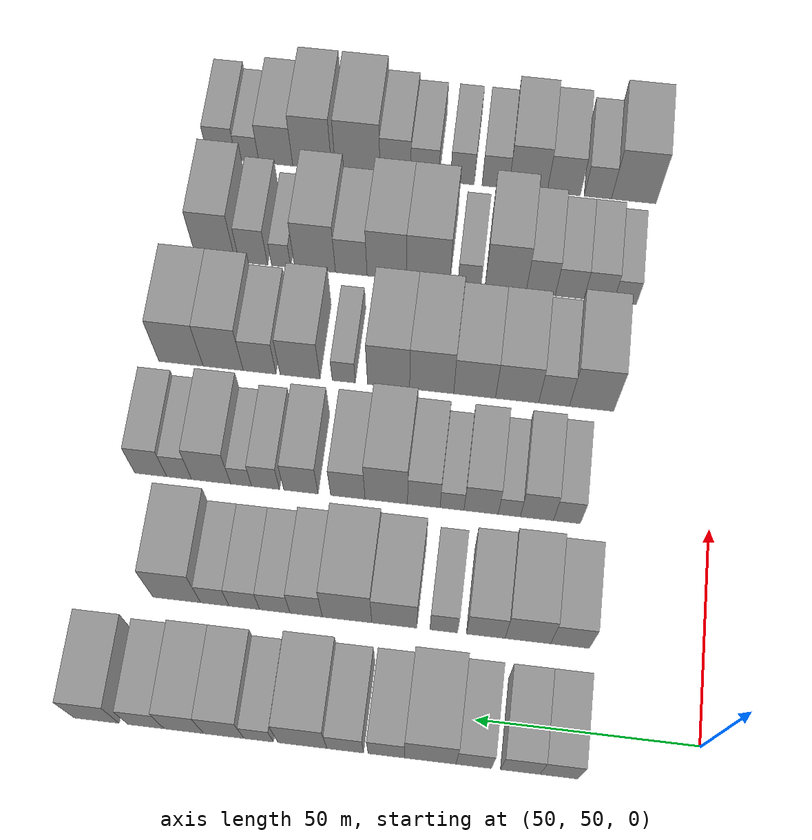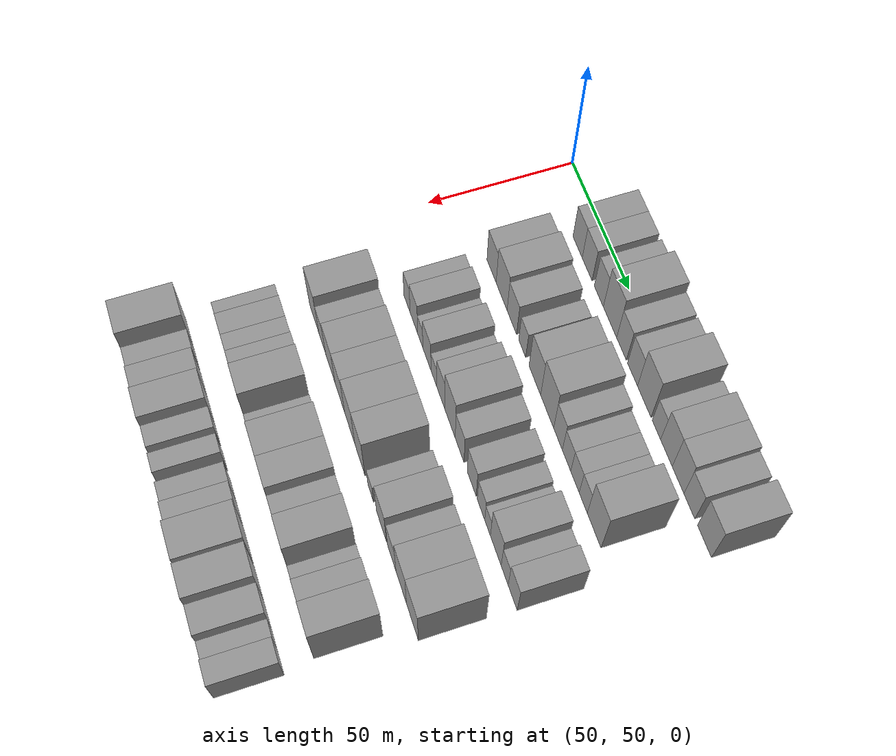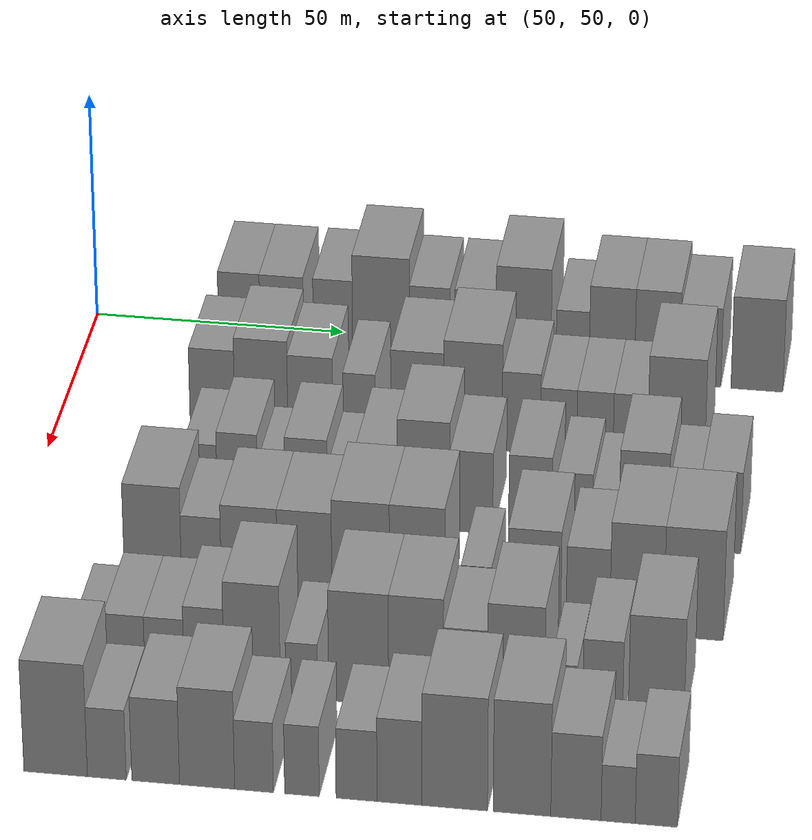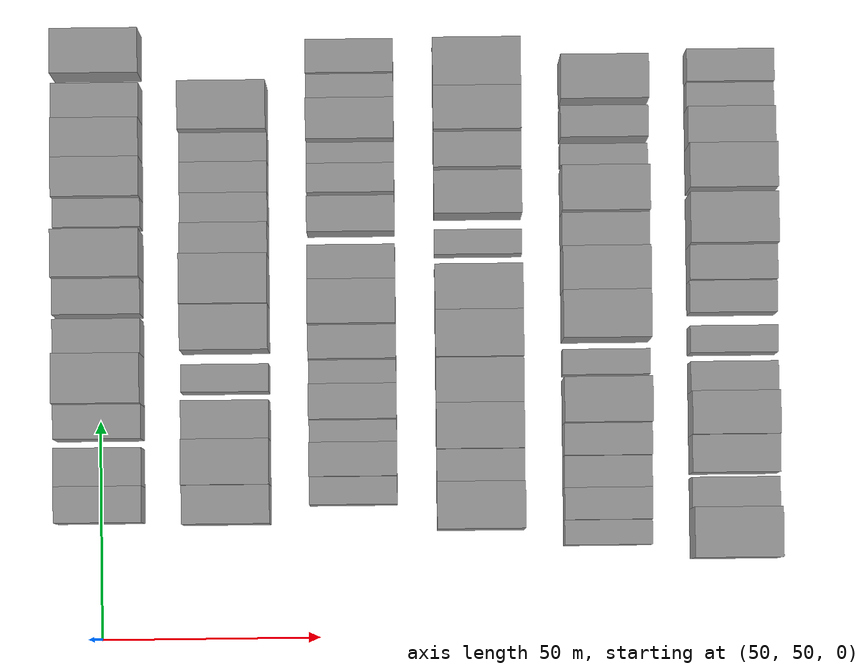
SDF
<sdf version="1.6">
 <world name="default">
  <model name="building_66">
   <static>1</static>
   <pose>50.0000 80.6092 0 0.000000 0.000000 0.000000</pose>
   <link name="link">
    <pose>0 0 9.00 0 0 0</pose>
    <collision name="collision"><geometry><box><size>20.0000 8.2912 18.0000</size></box></geometry></collision>
    <visual name="visual">
     <cast_shadows>0</cast_shadows>
     <geometry><box><size>20.0000 8.2912 18.0000</size></box></geometry>
     <material>
      <script>
       <uri>model://grey_wall/materials/scripts</uri>
       <uri>model://grey_wall/materials/textures</uri>
       <name>vrc/grey_wall</name>
      </script>
     </material>
    </visual>
   </link>
  </model>
  <model name="building_67">
   <static>1</static>
   <pose>50.0000 89.1082 0 0.000000 0.000000 0.000000</pose>
   <link name="link">
    <pose>0 0 9.00 0 0 0</pose>
    <collision name="collision"><geometry><box><size>20.0000 8.7069 18.0000</size></box></geometry></collision>
    <visual name="visual">
     <cast_shadows>0</cast_shadows>
     <geometry><box><size>20.0000 8.7069 18.0000</size></box></geometry>
     <material>
      <script>
       <uri>model://grey_wall/materials/scripts</uri>
       <uri>model://grey_wall/materials/textures</uri>
       <name>vrc/grey_wall</name>
      </script>
     </material>
    </visual>
   </link>
  </model>
  <model name="building_68">
   <static>1</static>
   <pose>50.0000 99.3788 0 0.000000 0.000000 0.000000</pose>
   <link name="link">
    <pose>0 0 9.00 0 0 0</pose>
    <collision name="collision"><geometry><box><size>20.0000 7.8343 18.0000</size></box></geometry></collision>
    <visual name="visual">
     <cast_shadows>0</cast_shadows>
     <geometry><box><size>20.0000 7.8343 18.0000</size></box></geometry>
     <material>
      <script>
       <uri>model://grey_wall/materials/scripts</uri>
       <uri>model://grey_wall/materials/textures</uri>
       <name>vrc/grey_wall</name>
      </script>
     </material>
    </visual>
   </link>
  </model>
  <model name="building_69">
   <static>1</static>
   <pose>50.0000 108.9774 0 0.000000 0.000000 0.000000</pose>
   <link name="link">
    <pose>0 0 12.00 0 0 0</pose>
    <collision name="collision"><geometry><box><size>20.0000 11.3629 24.0000</size></box></geometry></collision>
    <visual name="visual">
     <cast_shadows>0</cast_shadows>
     <geometry><box><size>20.0000 11.3629 24.0000</size></box></geometry>
     <material>
      <script>
       <uri>model://grey_wall/materials/scripts</uri>
       <uri>model://grey_wall/materials/textures</uri>
       <name>vrc/grey_wall</name>
      </script>
     </material>
    </visual>
   </link>
  </model>
  <model name="building_70">
   <static>1</static>
   <pose>50.0000 118.7033 0 0.000000 0.000000 0.000000</pose>
   <link name="link">
    <pose>0 0 9.00 0 0 0</pose>
    <collision name="collision"><geometry><box><size>20.0000 8.0889 18.0000</size></box></geometry></collision>
    <visual name="visual">
     <cast_shadows>0</cast_shadows>
     <geometry><box><size>20.0000 8.0889 18.0000</size></box></geometry>
     <material>
      <script>
       <uri>model://grey_wall/materials/scripts</uri>
       <uri>model://grey_wall/materials/textures</uri>
       <name>vrc/grey_wall</name>
      </script>
     </material>
    </visual>
   </link>
  </model>
  <model name="building_71">
   <static>1</static>
   <pose>50.0000 127.8200 0 0.000000 0.000000 0.000000</pose>
   <link name="link">
    <pose>0 0 9.00 0 0 0</pose>
    <collision name="collision"><geometry><box><size>20.0000 8.1446 18.0000</size></box></geometry></collision>
    <visual name="visual">
     <cast_shadows>0</cast_shadows>
     <geometry><box><size>20.0000 8.1446 18.0000</size></box></geometry>
     <material>
      <script>
       <uri>model://grey_wall/materials/scripts</uri>
       <uri>model://grey_wall/materials/textures</uri>
       <name>vrc/grey_wall</name>
      </script>
     </material>
    </visual>
   </link>
  </model>
  <model name="building_72">
   <static>1</static>
   <pose>50.0000 137.3575 0 0.000000 0.000000 0.000000</pose>
   <link name="link">
    <pose>0 0 12.00 0 0 0</pose>
    <collision name="collision"><geometry><box><size>20.0000 10.9302 24.0000</size></box></geometry></collision>
    <visual name="visual">
     <cast_shadows>0</cast_shadows>
     <geometry><box><size>20.0000 10.9302 24.0000</size></box></geometry>
     <material>
      <script>
       <uri>model://grey_wall/materials/scripts</uri>
       <uri>model://grey_wall/materials/textures</uri>
       <name>vrc/grey_wall</name>
      </script>
     </material>
    </visual>
   </link>
  </model>
  <model name="building_73">
   <static>1</static>
   <pose>50.0000 147.1158 0 0.000000 0.000000 0.000000</pose>
   <link name="link">
    <pose>0 0 7.50 0 0 0</pose>
    <collision name="collision"><geometry><box><size>20.0000 6.5864 15.0000</size></box></geometry></collision>
    <visual name="visual">
     <cast_shadows>0</cast_shadows>
     <geometry><box><size>20.0000 6.5864 15.0000</size></box></geometry>
     <material>
      <script>
       <uri>model://grey_wall/materials/scripts</uri>
       <uri>model://grey_wall/materials/textures</uri>
       <name>vrc/grey_wall</name>
      </script>
     </material>
    </visual>
   </link>
  </model>
  <model name="building_74">
   <static>1</static>
   <pose>50.0000 154.9128 0 0.000000 0.000000 0.000000</pose>
   <link name="link">
    <pose>0 0 10.50 0 0 0</pose>
    <collision name="collision"><geometry><box><size>20.0000 9.0077 21.0000</size></box></geometry></collision>
    <visual name="visual">
     <cast_shadows>0</cast_shadows>
     <geometry><box><size>20.0000 9.0077 21.0000</size></box></geometry>
     <material>
      <script>
       <uri>model://grey_wall/materials/scripts</uri>
       <uri>model://grey_wall/materials/textures</uri>
       <name>vrc/grey_wall</name>
      </script>
     </material>
    </visual>
   </link>
  </model>
  <model name="building_75">
   <static>1</static>
   <pose>50.0000 163.8682 0 0.000000 0.000000 0.000000</pose>
   <link name="link">
    <pose>0 0 10.50 0 0 0</pose>
    <collision name="collision"><geometry><box><size>20.0000 8.9032 21.0000</size></box></geometry></collision>
    <visual name="visual">
     <cast_shadows>0</cast_shadows>
     <geometry><box><size>20.0000 8.9032 21.0000</size></box></geometry>
     <material>
      <script>
       <uri>model://grey_wall/materials/scripts</uri>
       <uri>model://grey_wall/materials/textures</uri>
       <name>vrc/grey_wall</name>
      </script>
     </material>
    </visual>
   </link>
  </model>
  <model name="building_76">
   <static>1</static>
   <pose>50.0000 172.4005 0 0.000000 0.000000 0.000000</pose>
   <link name="link">
    <pose>0 0 9.00 0 0 0</pose>
    <collision name="collision"><geometry><box><size>20.0000 8.1613 18.0000</size></box></geometry></collision>
    <visual name="visual">
     <cast_shadows>0</cast_shadows>
     <geometry><box><size>20.0000 8.1613 18.0000</size></box></geometry>
     <material>
      <script>
       <uri>model://grey_wall/materials/scripts</uri>
       <uri>model://grey_wall/materials/textures</uri>
       <name>vrc/grey_wall</name>
      </script>
     </material>
    </visual>
   </link>
  </model>
  <model name="building_77">
   <static>1</static>
   <pose>50.0000 183.5862 0 0.000000 0.000000 0.000000</pose>
   <link name="link">
    <pose>0 0 10.50 0 0 0</pose>
    <collision name="collision"><geometry><box><size>20.0000 10.2101 21.0000</size></box></geometry></collision>
    <visual name="visual">
     <cast_shadows>0</cast_shadows>
     <geometry><box><size>20.0000 10.2101 21.0000</size></box></geometry>
     <material>
      <script>
       <uri>model://grey_wall/materials/scripts</uri>
       <uri>model://grey_wall/materials/textures</uri>
       <name>vrc/grey_wall</name>
      </script>
     </material>
    </visual>
   </link>
  </model>
  <model name="building_171">
   <static>1</static>
   <pose>79.0000 80.3180 0 0.000000 0.000000 0.000000</pose>
   <link name="link">
    <pose>0 0 9.00 0 0 0</pose>
    <collision name="collision"><geometry><box><size>20.0000 8.8121 18.0000</size></box></geometry></collision>
    <visual name="visual">
     <cast_shadows>0</cast_shadows>
     <geometry><box><size>20.0000 8.8121 18.0000</size></box></geometry>
     <material>
      <script>
       <uri>model://grey_wall/materials/scripts</uri>
       <uri>model://grey_wall/materials/textures</uri>
       <name>vrc/grey_wall</name>
      </script>
     </material>
    </visual>
   </link>
  </model>
  <model name="building_172">
   <static>1</static>
   <pose>79.0000 89.9202 0 0.000000 0.000000 0.000000</pose>
   <link name="link">
    <pose>0 0 10.50 0 0 0</pose>
    <collision name="collision"><geometry><box><size>20.0000 10.3924 21.0000</size></box></geometry></collision>
    <visual name="visual">
     <cast_shadows>0</cast_shadows>
     <geometry><box><size>20.0000 10.3924 21.0000</size></box></geometry>
     <material>
      <script>
       <uri>model://grey_wall/materials/scripts</uri>
       <uri>model://grey_wall/materials/textures</uri>
       <name>vrc/grey_wall</name>
      </script>
     </material>
    </visual>
   </link>
  </model>
  <model name="building_173">
   <static>1</static>
   <pose>79.0000 99.5312 0 0.000000 0.000000 0.000000</pose>
   <link name="link">
    <pose>0 0 9.00 0 0 0</pose>
    <collision name="collision"><geometry><box><size>20.0000 8.8297 18.0000</size></box></geometry></collision>
    <visual name="visual">
     <cast_shadows>0</cast_shadows>
     <geometry><box><size>20.0000 8.8297 18.0000</size></box></geometry>
     <material>
      <script>
       <uri>model://grey_wall/materials/scripts</uri>
       <uri>model://grey_wall/materials/textures</uri>
       <name>vrc/grey_wall</name>
      </script>
     </material>
    </visual>
   </link>
  </model>
  <model name="building_174">
   <static>1</static>
   <pose>79.0000 109.1077 0 0.000000 0.000000 0.000000</pose>
   <link name="link">
    <pose>0 0 7.50 0 0 0</pose>
    <collision name="collision"><geometry><box><size>20.0000 6.3233 15.0000</size></box></geometry></collision>
    <visual name="visual">
     <cast_shadows>0</cast_shadows>
     <geometry><box><size>20.0000 6.3233 15.0000</size></box></geometry>
     <material>
      <script>
       <uri>model://grey_wall/materials/scripts</uri>
       <uri>model://grey_wall/materials/textures</uri>
       <name>vrc/grey_wall</name>
      </script>
     </material>
    </visual>
   </link>
  </model>
  <model name="building_175">
   <static>1</static>
   <pose>79.0000 120.4273 0 0.000000 0.000000 0.000000</pose>
   <link name="link">
    <pose>0 0 10.50 0 0 0</pose>
    <collision name="collision"><geometry><box><size>20.0000 10.3157 21.0000</size></box></geometry></collision>
    <visual name="visual">
     <cast_shadows>0</cast_shadows>
     <geometry><box><size>20.0000 10.3157 21.0000</size></box></geometry>
     <material>
      <script>
       <uri>model://grey_wall/materials/scripts</uri>
       <uri>model://grey_wall/materials/textures</uri>
       <name>vrc/grey_wall</name>
      </script>
     </material>
    </visual>
   </link>
  </model>
  <model name="building_176">
   <static>1</static>
   <pose>79.0000 131.2692 0 0.000000 0.000000 0.000000</pose>
   <link name="link">
    <pose>0 0 12.00 0 0 0</pose>
    <collision name="collision"><geometry><box><size>20.0000 11.3682 24.0000</size></box></geometry></collision>
    <visual name="visual">
     <cast_shadows>0</cast_shadows>
     <geometry><box><size>20.0000 11.3682 24.0000</size></box></geometry>
     <material>
      <script>
       <uri>model://grey_wall/materials/scripts</uri>
       <uri>model://grey_wall/materials/textures</uri>
       <name>vrc/grey_wall</name>
      </script>
     </material>
    </visual>
   </link>
  </model>
  <model name="building_177">
   <static>1</static>
   <pose>79.0000 140.6771 0 0.000000 0.000000 0.000000</pose>
   <link name="link">
    <pose>0 0 9.00 0 0 0</pose>
    <collision name="collision"><geometry><box><size>20.0000 7.4476 18.0000</size></box></geometry></collision>
    <visual name="visual">
     <cast_shadows>0</cast_shadows>
     <geometry><box><size>20.0000 7.4476 18.0000</size></box></geometry>
     <material>
      <script>
       <uri>model://grey_wall/materials/scripts</uri>
       <uri>model://grey_wall/materials/textures</uri>
       <name>vrc/grey_wall</name>
      </script>
     </material>
    </visual>
   </link>
  </model>
  <model name="building_178">
   <static>1</static>
   <pose>79.0000 147.9046 0 0.000000 0.000000 0.000000</pose>
   <link name="link">
    <pose>0 0 7.50 0 0 0</pose>
    <collision name="collision"><geometry><box><size>20.0000 7.0075 15.0000</size></box></geometry></collision>
    <visual name="visual">
     <cast_shadows>0</cast_shadows>
     <geometry><box><size>20.0000 7.0075 15.0000</size></box></geometry>
     <material>
      <script>
       <uri>model://grey_wall/materials/scripts</uri>
       <uri>model://grey_wall/materials/textures</uri>
       <name>vrc/grey_wall</name>
      </script>
     </material>
    </visual>
   </link>
  </model>
  <model name="building_179">
   <static>1</static>
   <pose>79.0000 154.9412 0 0.000000 0.000000 0.000000</pose>
   <link name="link">
    <pose>0 0 7.50 0 0 0</pose>
    <collision name="collision"><geometry><box><size>20.0000 7.0657 15.0000</size></box></geometry></collision>
    <visual name="visual">
     <cast_shadows>0</cast_shadows>
     <geometry><box><size>20.0000 7.0657 15.0000</size></box></geometry>
     <material>
      <script>
       <uri>model://grey_wall/materials/scripts</uri>
       <uri>model://grey_wall/materials/textures</uri>
       <name>vrc/grey_wall</name>
      </script>
     </material>
    </visual>
   </link>
  </model>
  <model name="building_180">
   <static>1</static>
   <pose>79.0000 161.7902 0 0.000000 0.000000 0.000000</pose>
   <link name="link">
    <pose>0 0 7.50 0 0 0</pose>
    <collision name="collision"><geometry><box><size>20.0000 6.6323 15.0000</size></box></geometry></collision>
    <visual name="visual">
     <cast_shadows>0</cast_shadows>
     <geometry><box><size>20.0000 6.6323 15.0000</size></box></geometry>
     <material>
      <script>
       <uri>model://grey_wall/materials/scripts</uri>
       <uri>model://grey_wall/materials/textures</uri>
       <name>vrc/grey_wall</name>
      </script>
     </material>
    </visual>
   </link>
  </model>
  <model name="building_181">
   <static>1</static>
   <pose>79.0000 170.6382 0 0.000000 0.000000 0.000000</pose>
   <link name="link">
    <pose>0 0 12.00 0 0 0</pose>
    <collision name="collision"><geometry><box><size>20.0000 11.0636 24.0000</size></box></geometry></collision>
    <visual name="visual">
     <cast_shadows>0</cast_shadows>
     <geometry><box><size>20.0000 11.0636 24.0000</size></box></geometry>
     <material>
      <script>
       <uri>model://grey_wall/materials/scripts</uri>
       <uri>model://grey_wall/materials/textures</uri>
       <name>vrc/grey_wall</name>
      </script>
     </material>
    </visual>
   </link>
  </model>
  <model name="building_284">
   <static>1</static>
   <pose>108.0000 83.2355 0 0.000000 0.000000 0.000000</pose>
   <link name="link">
    <pose>0 0 7.50 0 0 0</pose>
    <collision name="collision"><geometry><box><size>20.0000 6.3261 15.0000</size></box></geometry></collision>
    <visual name="visual">
     <cast_shadows>0</cast_shadows>
     <geometry><box><size>20.0000 6.3261 15.0000</size></box></geometry>
     <material>
      <script>
       <uri>model://grey_wall/materials/scripts</uri>
       <uri>model://grey_wall/materials/textures</uri>
       <name>vrc/grey_wall</name>
      </script>
     </material>
    </visual>
   </link>
  </model>
  <model name="building_285">
   <static>1</static>
   <pose>108.0000 90.2964 0 0.000000 0.000000 0.000000</pose>
   <link name="link">
    <pose>0 0 9.00 0 0 0</pose>
    <collision name="collision"><geometry><box><size>20.0000 7.7957 18.0000</size></box></geometry></collision>
    <visual name="visual">
     <cast_shadows>0</cast_shadows>
     <geometry><box><size>20.0000 7.7957 18.0000</size></box></geometry>
     <material>
      <script>
       <uri>model://grey_wall/materials/scripts</uri>
       <uri>model://grey_wall/materials/textures</uri>
       <name>vrc/grey_wall</name>
      </script>
     </material>
    </visual>
   </link>
  </model>
  <model name="building_286">
   <static>1</static>
   <pose>108.0000 96.7942 0 0.000000 0.000000 0.000000</pose>
   <link name="link">
    <pose>0 0 6.00 0 0 0</pose>
    <collision name="collision"><geometry><box><size>20.0000 5.2000 12.0000</size></box></geometry></collision>
    <visual name="visual">
     <cast_shadows>0</cast_shadows>
     <geometry><box><size>20.0000 5.2000 12.0000</size></box></geometry>
     <material>
      <script>
       <uri>model://grey_wall/materials/scripts</uri>
       <uri>model://grey_wall/materials/textures</uri>
       <name>vrc/grey_wall</name>
      </script>
     </material>
    </visual>
   </link>
  </model>
  <model name="building_287">
   <static>1</static>
   <pose>108.0000 103.4294 0 0.000000 0.000000 0.000000</pose>
   <link name="link">
    <pose>0 0 9.00 0 0 0</pose>
    <collision name="collision"><geometry><box><size>20.0000 8.0704 18.0000</size></box></geometry></collision>
    <visual name="visual">
     <cast_shadows>0</cast_shadows>
     <geometry><box><size>20.0000 8.0704 18.0000</size></box></geometry>
     <material>
      <script>
       <uri>model://grey_wall/materials/scripts</uri>
       <uri>model://grey_wall/materials/textures</uri>
       <name>vrc/grey_wall</name>
      </script>
     </material>
    </visual>
   </link>
  </model>
  <model name="building_288">
   <static>1</static>
   <pose>108.0000 110.2813 0 0.000000 0.000000 0.000000</pose>
   <link name="link">
    <pose>0 0 6.00 0 0 0</pose>
    <collision name="collision"><geometry><box><size>20.0000 5.6335 12.0000</size></box></geometry></collision>
    <visual name="visual">
     <cast_shadows>0</cast_shadows>
     <geometry><box><size>20.0000 5.6335 12.0000</size></box></geometry>
     <material>
      <script>
       <uri>model://grey_wall/materials/scripts</uri>
       <uri>model://grey_wall/materials/textures</uri>
       <name>vrc/grey_wall</name>
      </script>
     </material>
    </visual>
   </link>
  </model>
  <model name="building_289">
   <static>1</static>
   <pose>108.0000 116.9407 0 0.000000 0.000000 0.000000</pose>
   <link name="link">
    <pose>0 0 9.00 0 0 0</pose>
    <collision name="collision"><geometry><box><size>20.0000 7.6851 18.0000</size></box></geometry></collision>
    <visual name="visual">
     <cast_shadows>0</cast_shadows>
     <geometry><box><size>20.0000 7.6851 18.0000</size></box></geometry>
     <material>
      <script>
       <uri>model://grey_wall/materials/scripts</uri>
       <uri>model://grey_wall/materials/textures</uri>
       <name>vrc/grey_wall</name>
      </script>
     </material>
    </visual>
   </link>
  </model>
  <model name="building_290">
   <static>1</static>
   <pose>108.0000 125.8195 0 0.000000 0.000000 0.000000</pose>
   <link name="link">
    <pose>0 0 12.00 0 0 0</pose>
    <collision name="collision"><geometry><box><size>20.0000 10.0725 24.0000</size></box></geometry></collision>
    <visual name="visual">
     <cast_shadows>0</cast_shadows>
     <geometry><box><size>20.0000 10.0725 24.0000</size></box></geometry>
     <material>
      <script>
       <uri>model://grey_wall/materials/scripts</uri>
       <uri>model://grey_wall/materials/textures</uri>
       <name>vrc/grey_wall</name>
      </script>
     </material>
    </visual>
   </link>
  </model>
  <model name="building_291">
   <static>1</static>
   <pose>108.0000 134.9345 0 0.000000 0.000000 0.000000</pose>
   <link name="link">
    <pose>0 0 9.00 0 0 0</pose>
    <collision name="collision"><geometry><box><size>20.0000 8.1575 18.0000</size></box></geometry></collision>
    <visual name="visual">
     <cast_shadows>0</cast_shadows>
     <geometry><box><size>20.0000 8.1575 18.0000</size></box></geometry>
     <material>
      <script>
       <uri>model://grey_wall/materials/scripts</uri>
       <uri>model://grey_wall/materials/textures</uri>
       <name>vrc/grey_wall</name>
      </script>
     </material>
    </visual>
   </link>
  </model>
  <model name="building_292">
   <static>1</static>
   <pose>108.0000 146.1019 0 0.000000 0.000000 0.000000</pose>
   <link name="link">
    <pose>0 0 9.00 0 0 0</pose>
    <collision name="collision"><geometry><box><size>20.0000 8.1774 18.0000</size></box></geometry></collision>
    <visual name="visual">
     <cast_shadows>0</cast_shadows>
     <geometry><box><size>20.0000 8.1774 18.0000</size></box></geometry>
     <material>
      <script>
       <uri>model://grey_wall/materials/scripts</uri>
       <uri>model://grey_wall/materials/textures</uri>
       <name>vrc/grey_wall</name>
      </script>
     </material>
    </visual>
   </link>
  </model>
  <model name="building_293">
   <static>1</static>
   <pose>108.0000 154.5231 0 0.000000 0.000000 0.000000</pose>
   <link name="link">
    <pose>0 0 7.50 0 0 0</pose>
    <collision name="collision"><geometry><box><size>20.0000 6.6649 15.0000</size></box></geometry></collision>
    <visual name="visual">
     <cast_shadows>0</cast_shadows>
     <geometry><box><size>20.0000 6.6649 15.0000</size></box></geometry>
     <material>
      <script>
       <uri>model://grey_wall/materials/scripts</uri>
       <uri>model://grey_wall/materials/textures</uri>
       <name>vrc/grey_wall</name>
      </script>
     </material>
    </visual>
   </link>
  </model>
  <model name="building_294">
   <static>1</static>
   <pose>108.0000 160.3654 0 0.000000 0.000000 0.000000</pose>
   <link name="link">
    <pose>0 0 6.00 0 0 0</pose>
    <collision name="collision"><geometry><box><size>20.0000 5.0198 12.0000</size></box></geometry></collision>
    <visual name="visual">
     <cast_shadows>0</cast_shadows>
     <geometry><box><size>20.0000 5.0198 12.0000</size></box></geometry>
     <material>
      <script>
       <uri>model://grey_wall/materials/scripts</uri>
       <uri>model://grey_wall/materials/textures</uri>
       <name>vrc/grey_wall</name>
      </script>
     </material>
    </visual>
   </link>
  </model>
  <model name="building_295">
   <static>1</static>
   <pose>108.0000 167.5524 0 0.000000 0.000000 0.000000</pose>
   <link name="link">
    <pose>0 0 10.50 0 0 0</pose>
    <collision name="collision"><geometry><box><size>20.0000 9.3542 21.0000</size></box></geometry></collision>
    <visual name="visual">
     <cast_shadows>0</cast_shadows>
     <geometry><box><size>20.0000 9.3542 21.0000</size></box></geometry>
     <material>
      <script>
       <uri>model://grey_wall/materials/scripts</uri>
       <uri>model://grey_wall/materials/textures</uri>
       <name>vrc/grey_wall</name>
      </script>
     </material>
    </visual>
   </link>
  </model>
  <model name="building_296">
   <static>1</static>
   <pose>108.0000 175.2363 0 0.000000 0.000000 0.000000</pose>
   <link name="link">
    <pose>0 0 7.50 0 0 0</pose>
    <collision name="collision"><geometry><box><size>20.0000 6.0135 15.0000</size></box></geometry></collision>
    <visual name="visual">
     <cast_shadows>0</cast_shadows>
     <geometry><box><size>20.0000 6.0135 15.0000</size></box></geometry>
     <material>
      <script>
       <uri>model://grey_wall/materials/scripts</uri>
       <uri>model://grey_wall/materials/textures</uri>
       <name>vrc/grey_wall</name>
      </script>
     </material>
    </visual>
   </link>
  </model>
  <model name="building_297">
   <static>1</static>
   <pose>108.0000 182.0620 0 0.000000 0.000000 0.000000</pose>
   <link name="link">
    <pose>0 0 9.00 0 0 0</pose>
    <collision name="collision"><geometry><box><size>20.0000 7.6379 18.0000</size></box></geometry></collision>
    <visual name="visual">
     <cast_shadows>0</cast_shadows>
     <geometry><box><size>20.0000 7.6379 18.0000</size></box></geometry>
     <material>
      <script>
       <uri>model://grey_wall/materials/scripts</uri>
       <uri>model://grey_wall/materials/textures</uri>
       <name>vrc/grey_wall</name>
      </script>
     </material>
    </visual>
   </link>
  </model>
  <model name="building_390">
   <static>1</static>
   <pose>137.0000 79.4764 0 0.000000 0.000000 0.000000</pose>
   <link name="link">
    <pose>0 0 12.00 0 0 0</pose>
    <collision name="collision"><geometry><box><size>20.0000 10.7238 24.0000</size></box></geometry></collision>
    <visual name="visual">
     <cast_shadows>0</cast_shadows>
     <geometry><box><size>20.0000 10.7238 24.0000</size></box></geometry>
     <material>
      <script>
       <uri>model://grey_wall/materials/scripts</uri>
       <uri>model://grey_wall/materials/textures</uri>
       <name>vrc/grey_wall</name>
      </script>
     </material>
    </visual>
   </link>
  </model>
  <model name="building_391">
   <static>1</static>
   <pose>137.0000 88.5669 0 0.000000 0.000000 0.000000</pose>
   <link name="link">
    <pose>0 0 9.00 0 0 0</pose>
    <collision name="collision"><geometry><box><size>20.0000 7.4572 18.0000</size></box></geometry></collision>
    <visual name="visual">
     <cast_shadows>0</cast_shadows>
     <geometry><box><size>20.0000 7.4572 18.0000</size></box></geometry>
     <material>
      <script>
       <uri>model://grey_wall/materials/scripts</uri>
       <uri>model://grey_wall/materials/textures</uri>
       <name>vrc/grey_wall</name>
      </script>
     </material>
    </visual>
   </link>
  </model>
  <model name="building_392">
   <static>1</static>
   <pose>137.0000 97.5372 0 0.000000 0.000000 0.000000</pose>
   <link name="link">
    <pose>0 0 10.50 0 0 0</pose>
    <collision name="collision"><geometry><box><size>20.0000 10.4835 21.0000</size></box></geometry></collision>
    <visual name="visual">
     <cast_shadows>0</cast_shadows>
     <geometry><box><size>20.0000 10.4835 21.0000</size></box></geometry>
     <material>
      <script>
       <uri>model://grey_wall/materials/scripts</uri>
       <uri>model://grey_wall/materials/textures</uri>
       <name>vrc/grey_wall</name>
      </script>
     </material>
    </visual>
   </link>
  </model>
  <model name="building_393">
   <static>1</static>
   <pose>137.0000 107.8632 0 0.000000 0.000000 0.000000</pose>
   <link name="link">
    <pose>0 0 10.50 0 0 0</pose>
    <collision name="collision"><geometry><box><size>20.0000 10.1684 21.0000</size></box></geometry></collision>
    <visual name="visual">
     <cast_shadows>0</cast_shadows>
     <geometry><box><size>20.0000 10.1684 21.0000</size></box></geometry>
     <material>
      <script>
       <uri>model://grey_wall/materials/scripts</uri>
       <uri>model://grey_wall/materials/textures</uri>
       <name>vrc/grey_wall</name>
      </script>
     </material>
    </visual>
   </link>
  </model>
  <model name="building_394">
   <static>1</static>
   <pose>137.0000 118.3097 0 0.000000 0.000000 0.000000</pose>
   <link name="link">
    <pose>0 0 12.00 0 0 0</pose>
    <collision name="collision"><geometry><box><size>20.0000 10.7246 24.0000</size></box></geometry></collision>
    <visual name="visual">
     <cast_shadows>0</cast_shadows>
     <geometry><box><size>20.0000 10.7246 24.0000</size></box></geometry>
     <material>
      <script>
       <uri>model://grey_wall/materials/scripts</uri>
       <uri>model://grey_wall/materials/textures</uri>
       <name>vrc/grey_wall</name>
      </script>
     </material>
    </visual>
   </link>
  </model>
  <model name="building_395">
   <static>1</static>
   <pose>137.0000 128.8109 0 0.000000 0.000000 0.000000</pose>
   <link name="link">
    <pose>0 0 12.00 0 0 0</pose>
    <collision name="collision"><geometry><box><size>20.0000 10.2777 24.0000</size></box></geometry></collision>
    <visual name="visual">
     <cast_shadows>0</cast_shadows>
     <geometry><box><size>20.0000 10.2777 24.0000</size></box></geometry>
     <material>
      <script>
       <uri>model://grey_wall/materials/scripts</uri>
       <uri>model://grey_wall/materials/textures</uri>
       <name>vrc/grey_wall</name>
      </script>
     </material>
    </visual>
   </link>
  </model>
  <model name="building_396">
   <static>1</static>
   <pose>137.0000 139.7769 0 0.000000 0.000000 0.000000</pose>
   <link name="link">
    <pose>0 0 6.00 0 0 0</pose>
    <collision name="collision"><geometry><box><size>20.0000 5.6543 12.0000</size></box></geometry></collision>
    <visual name="visual">
     <cast_shadows>0</cast_shadows>
     <geometry><box><size>20.0000 5.6543 12.0000</size></box></geometry>
     <material>
      <script>
       <uri>model://grey_wall/materials/scripts</uri>
       <uri>model://grey_wall/materials/textures</uri>
       <name>vrc/grey_wall</name>
      </script>
     </material>
    </visual>
   </link>
  </model>
  <model name="building_397">
   <static>1</static>
   <pose>137.0000 150.5144 0 0.000000 0.000000 0.000000</pose>
   <link name="link">
    <pose>0 0 10.50 0 0 0</pose>
    <collision name="collision"><geometry><box><size>20.0000 9.8208 21.0000</size></box></geometry></collision>
    <visual name="visual">
     <cast_shadows>0</cast_shadows>
     <geometry><box><size>20.0000 9.8208 21.0000</size></box></geometry>
     <material>
      <script>
       <uri>model://grey_wall/materials/scripts</uri>
       <uri>model://grey_wall/materials/textures</uri>
       <name>vrc/grey_wall</name>
      </script>
     </material>
    </visual>
   </link>
  </model>
  <model name="building_398">
   <static>1</static>
   <pose>137.0000 160.4591 0 0.000000 0.000000 0.000000</pose>
   <link name="link">
    <pose>0 0 9.00 0 0 0</pose>
    <collision name="collision"><geometry><box><size>20.0000 8.0686 18.0000</size></box></geometry></collision>
    <visual name="visual">
     <cast_shadows>0</cast_shadows>
     <geometry><box><size>20.0000 8.0686 18.0000</size></box></geometry>
     <material>
      <script>
       <uri>model://grey_wall/materials/scripts</uri>
       <uri>model://grey_wall/materials/textures</uri>
       <name>vrc/grey_wall</name>
      </script>
     </material>
    </visual>
   </link>
  </model>
  <model name="building_399">
   <static>1</static>
   <pose>137.0000 169.4658 0 0.000000 0.000000 0.000000</pose>
   <link name="link">
    <pose>0 0 12.00 0 0 0</pose>
    <collision name="collision"><geometry><box><size>20.0000 9.9449 24.0000</size></box></geometry></collision>
    <visual name="visual">
     <cast_shadows>0</cast_shadows>
     <geometry><box><size>20.0000 9.9449 24.0000</size></box></geometry>
     <material>
      <script>
       <uri>model://grey_wall/materials/scripts</uri>
       <uri>model://grey_wall/materials/textures</uri>
       <name>vrc/grey_wall</name>
      </script>
     </material>
    </visual>
   </link>
  </model>
  <model name="building_400">
   <static>1</static>
   <pose>137.0000 179.9068 0 0.000000 0.000000 0.000000</pose>
   <link name="link">
    <pose>0 0 12.00 0 0 0</pose>
    <collision name="collision"><geometry><box><size>20.0000 10.9370 24.0000</size></box></geometry></collision>
    <visual name="visual">
     <cast_shadows>0</cast_shadows>
     <geometry><box><size>20.0000 10.9370 24.0000</size></box></geometry>
     <material>
      <script>
       <uri>model://grey_wall/materials/scripts</uri>
       <uri>model://grey_wall/materials/textures</uri>
       <name>vrc/grey_wall</name>
      </script>
     </material>
    </visual>
   </link>
  </model>
  <model name="building_508">
   <static>1</static>
   <pose>166.0000 73.1877 0 0.000000 0.000000 0.000000</pose>
   <link name="link">
    <pose>0 0 6.00 0 0 0</pose>
    <collision name="collision"><geometry><box><size>20.0000 5.6935 12.0000</size></box></geometry></collision>
    <visual name="visual">
     <cast_shadows>0</cast_shadows>
     <geometry><box><size>20.0000 5.6935 12.0000</size></box></geometry>
     <material>
      <script>
       <uri>model://grey_wall/materials/scripts</uri>
       <uri>model://grey_wall/materials/textures</uri>
       <name>vrc/grey_wall</name>
      </script>
     </material>
    </visual>
   </link>
  </model>
  <model name="building_509">
   <static>1</static>
   <pose>166.0000 79.7025 0 0.000000 0.000000 0.000000</pose>
   <link name="link">
    <pose>0 0 7.50 0 0 0</pose>
    <collision name="collision"><geometry><box><size>20.0000 7.3360 15.0000</size></box></geometry></collision>
    <visual name="visual">
     <cast_shadows>0</cast_shadows>
     <geometry><box><size>20.0000 7.3360 15.0000</size></box></geometry>
     <material>
      <script>
       <uri>model://grey_wall/materials/scripts</uri>
       <uri>model://grey_wall/materials/textures</uri>
       <name>vrc/grey_wall</name>
      </script>
     </material>
    </visual>
   </link>
  </model>
  <model name="building_510">
   <static>1</static>
   <pose>166.0000 86.9633 0 0.000000 0.000000 0.000000</pose>
   <link name="link">
    <pose>0 0 7.50 0 0 0</pose>
    <collision name="collision"><geometry><box><size>20.0000 7.1857 15.0000</size></box></geometry></collision>
    <visual name="visual">
     <cast_shadows>0</cast_shadows>
     <geometry><box><size>20.0000 7.1857 15.0000</size></box></geometry>
     <material>
      <script>
       <uri>model://grey_wall/materials/scripts</uri>
       <uri>model://grey_wall/materials/textures</uri>
       <name>vrc/grey_wall</name>
      </script>
     </material>
    </visual>
   </link>
  </model>
  <model name="building_511">
   <static>1</static>
   <pose>166.0000 94.2095 0 0.000000 0.000000 0.000000</pose>
   <link name="link">
    <pose>0 0 9.00 0 0 0</pose>
    <collision name="collision"><geometry><box><size>20.0000 7.3066 18.0000</size></box></geometry></collision>
    <visual name="visual">
     <cast_shadows>0</cast_shadows>
     <geometry><box><size>20.0000 7.3066 18.0000</size></box></geometry>
     <material>
      <script>
       <uri>model://grey_wall/materials/scripts</uri>
       <uri>model://grey_wall/materials/textures</uri>
       <name>vrc/grey_wall</name>
      </script>
     </material>
    </visual>
   </link>
  </model>
  <model name="building_512">
   <static>1</static>
   <pose>166.0000 102.9979 0 0.000000 0.000000 0.000000</pose>
   <link name="link">
    <pose>0 0 12.00 0 0 0</pose>
    <collision name="collision"><geometry><box><size>20.0000 10.2702 24.0000</size></box></geometry></collision>
    <visual name="visual">
     <cast_shadows>0</cast_shadows>
     <geometry><box><size>20.0000 10.2702 24.0000</size></box></geometry>
     <material>
      <script>
       <uri>model://grey_wall/materials/scripts</uri>
       <uri>model://grey_wall/materials/textures</uri>
       <name>vrc/grey_wall</name>
      </script>
     </material>
    </visual>
   </link>
  </model>
  <model name="building_513">
   <static>1</static>
   <pose>166.0000 112.0356 0 0.000000 0.000000 0.000000</pose>
   <link name="link">
    <pose>0 0 6.00 0 0 0</pose>
    <collision name="collision"><geometry><box><size>20.0000 5.8053 12.0000</size></box></geometry></collision>
    <visual name="visual">
     <cast_shadows>0</cast_shadows>
     <geometry><box><size>20.0000 5.8053 12.0000</size></box></geometry>
     <material>
      <script>
       <uri>model://grey_wall/materials/scripts</uri>
       <uri>model://grey_wall/materials/textures</uri>
       <name>vrc/grey_wall</name>
      </script>
     </material>
    </visual>
   </link>
  </model>
  <model name="building_514">
   <static>1</static>
   <pose>166.0000 122.3892 0 0.000000 0.000000 0.000000</pose>
   <link name="link">
    <pose>0 0 12.00 0 0 0</pose>
    <collision name="collision"><geometry><box><size>20.0000 10.9018 24.0000</size></box></geometry></collision>
    <visual name="visual">
     <cast_shadows>0</cast_shadows>
     <geometry><box><size>20.0000 10.9018 24.0000</size></box></geometry>
     <material>
      <script>
       <uri>model://grey_wall/materials/scripts</uri>
       <uri>model://grey_wall/materials/textures</uri>
       <name>vrc/grey_wall</name>
      </script>
     </material>
    </visual>
   </link>
  </model>
  <model name="building_515">
   <static>1</static>
   <pose>166.0000 132.8039 0 0.000000 0.000000 0.000000</pose>
   <link name="link">
    <pose>0 0 12.00 0 0 0</pose>
    <collision name="collision"><geometry><box><size>20.0000 9.9276 24.0000</size></box></geometry></collision>
    <visual name="visual">
     <cast_shadows>0</cast_shadows>
     <geometry><box><size>20.0000 9.9276 24.0000</size></box></geometry>
     <material>
      <script>
       <uri>model://grey_wall/materials/scripts</uri>
       <uri>model://grey_wall/materials/textures</uri>
       <name>vrc/grey_wall</name>
      </script>
     </material>
    </visual>
   </link>
  </model>
  <model name="building_516">
   <static>1</static>
   <pose>166.0000 141.7629 0 0.000000 0.000000 0.000000</pose>
   <link name="link">
    <pose>0 0 9.00 0 0 0</pose>
    <collision name="collision"><geometry><box><size>20.0000 7.9904 18.0000</size></box></geometry></collision>
    <visual name="visual">
     <cast_shadows>0</cast_shadows>
     <geometry><box><size>20.0000 7.9904 18.0000</size></box></geometry>
     <material>
      <script>
       <uri>model://grey_wall/materials/scripts</uri>
       <uri>model://grey_wall/materials/textures</uri>
       <name>vrc/grey_wall</name>
      </script>
     </material>
    </visual>
   </link>
  </model>
  <model name="building_517">
   <static>1</static>
   <pose>166.0000 150.9082 0 0.000000 0.000000 0.000000</pose>
   <link name="link">
    <pose>0 0 12.00 0 0 0</pose>
    <collision name="collision"><geometry><box><size>20.0000 10.3003 24.0000</size></box></geometry></collision>
    <visual name="visual">
     <cast_shadows>0</cast_shadows>
     <geometry><box><size>20.0000 10.3003 24.0000</size></box></geometry>
     <material>
      <script>
       <uri>model://grey_wall/materials/scripts</uri>
       <uri>model://grey_wall/materials/textures</uri>
       <name>vrc/grey_wall</name>
      </script>
     </material>
    </visual>
   </link>
  </model>
  <model name="building_518">
   <static>1</static>
   <pose>166.0000 159.4893 0 0.000000 0.000000 0.000000</pose>
   <link name="link">
    <pose>0 0 6.00 0 0 0</pose>
    <collision name="collision"><geometry><box><size>20.0000 4.8619 12.0000</size></box></geometry></collision>
    <visual name="visual">
     <cast_shadows>0</cast_shadows>
     <geometry><box><size>20.0000 4.8619 12.0000</size></box></geometry>
     <material>
      <script>
       <uri>model://grey_wall/materials/scripts</uri>
       <uri>model://grey_wall/materials/textures</uri>
       <name>vrc/grey_wall</name>
      </script>
     </material>
    </visual>
   </link>
  </model>
  <model name="building_519">
   <static>1</static>
   <pose>166.0000 166.5242 0 0.000000 0.000000 0.000000</pose>
   <link name="link">
    <pose>0 0 9.00 0 0 0</pose>
    <collision name="collision"><geometry><box><size>20.0000 7.2081 18.0000</size></box></geometry></collision>
    <visual name="visual">
     <cast_shadows>0</cast_shadows>
     <geometry><box><size>20.0000 7.2081 18.0000</size></box></geometry>
     <material>
      <script>
       <uri>model://grey_wall/materials/scripts</uri>
       <uri>model://grey_wall/materials/textures</uri>
       <name>vrc/grey_wall</name>
      </script>
     </material>
    </visual>
   </link>
  </model>
  <model name="building_520">
   <static>1</static>
   <pose>166.0000 176.1526 0 0.000000 0.000000 0.000000</pose>
   <link name="link">
    <pose>0 0 12.00 0 0 0</pose>
    <collision name="collision"><geometry><box><size>20.0000 10.0488 24.0000</size></box></geometry></collision>
    <visual name="visual">
     <cast_shadows>0</cast_shadows>
     <geometry><box><size>20.0000 10.0488 24.0000</size></box></geometry>
     <material>
      <script>
       <uri>model://grey_wall/materials/scripts</uri>
       <uri>model://grey_wall/materials/textures</uri>
       <name>vrc/grey_wall</name>
      </script>
     </material>
    </visual>
   </link>
  </model>
  <model name="building_620">
   <static>1</static>
   <pose>195.0000 72.7295 0 0.000000 0.000000 0.000000</pose>
   <link name="link">
    <pose>0 0 12.00 0 0 0</pose>
    <collision name="collision"><geometry><box><size>20.0000 11.4170 24.0000</size></box></geometry></collision>
    <visual name="visual">
     <cast_shadows>0</cast_shadows>
     <geometry><box><size>20.0000 11.4170 24.0000</size></box></geometry>
     <material>
      <script>
       <uri>model://grey_wall/materials/scripts</uri>
       <uri>model://grey_wall/materials/textures</uri>
       <name>vrc/grey_wall</name>
      </script>
     </material>
    </visual>
   </link>
  </model>
  <model name="building_621">
   <static>1</static>
   <pose>195.0000 81.9197 0 0.000000 0.000000 0.000000</pose>
   <link name="link">
    <pose>0 0 7.50 0 0 0</pose>
    <collision name="collision"><geometry><box><size>20.0000 6.9634 15.0000</size></box></geometry></collision>
    <visual name="visual">
     <cast_shadows>0</cast_shadows>
     <geometry><box><size>20.0000 6.9634 15.0000</size></box></geometry>
     <material>
      <script>
       <uri>model://grey_wall/materials/scripts</uri>
       <uri>model://grey_wall/materials/textures</uri>
       <name>vrc/grey_wall</name>
      </script>
     </material>
    </visual>
   </link>
  </model>
  <model name="building_622">
   <static>1</static>
   <pose>195.0000 90.6772 0 0.000000 0.000000 0.000000</pose>
   <link name="link">
    <pose>0 0 9.00 0 0 0</pose>
    <collision name="collision"><geometry><box><size>20.0000 8.5516 18.0000</size></box></geometry></collision>
    <visual name="visual">
     <cast_shadows>0</cast_shadows>
     <geometry><box><size>20.0000 8.5516 18.0000</size></box></geometry>
     <material>
      <script>
       <uri>model://grey_wall/materials/scripts</uri>
       <uri>model://grey_wall/materials/textures</uri>
       <name>vrc/grey_wall</name>
      </script>
     </material>
    </visual>
   </link>
  </model>
  <model name="building_623">
   <static>1</static>
   <pose>195.0000 99.8763 0 0.000000 0.000000 0.000000</pose>
   <link name="link">
    <pose>0 0 10.50 0 0 0</pose>
    <collision name="collision"><geometry><box><size>20.0000 9.8465 21.0000</size></box></geometry></collision>
    <visual name="visual">
     <cast_shadows>0</cast_shadows>
     <geometry><box><size>20.0000 9.8465 21.0000</size></box></geometry>
     <material>
      <script>
       <uri>model://grey_wall/materials/scripts</uri>
       <uri>model://grey_wall/materials/textures</uri>
       <name>vrc/grey_wall</name>
      </script>
     </material>
    </visual>
   </link>
  </model>
  <model name="building_624">
   <static>1</static>
   <pose>195.0000 108.2539 0 0.000000 0.000000 0.000000</pose>
   <link name="link">
    <pose>0 0 7.50 0 0 0</pose>
    <collision name="collision"><geometry><box><size>20.0000 6.9087 15.0000</size></box></geometry></collision>
    <visual name="visual">
     <cast_shadows>0</cast_shadows>
     <geometry><box><size>20.0000 6.9087 15.0000</size></box></geometry>
     <material>
      <script>
       <uri>model://grey_wall/materials/scripts</uri>
       <uri>model://grey_wall/materials/textures</uri>
       <name>vrc/grey_wall</name>
      </script>
     </material>
    </visual>
   </link>
  </model>
  <model name="building_625">
   <static>1</static>
   <pose>195.0000 116.7829 0 0.000000 0.000000 0.000000</pose>
   <link name="link">
    <pose>0 0 7.50 0 0 0</pose>
    <collision name="collision"><geometry><box><size>20.0000 6.1494 15.0000</size></box></geometry></collision>
    <visual name="visual">
     <cast_shadows>0</cast_shadows>
     <geometry><box><size>20.0000 6.1494 15.0000</size></box></geometry>
     <material>
      <script>
       <uri>model://grey_wall/materials/scripts</uri>
       <uri>model://grey_wall/materials/textures</uri>
       <name>vrc/grey_wall</name>
      </script>
     </material>
    </visual>
   </link>
  </model>
  <model name="building_626">
   <static>1</static>
   <pose>195.0000 126.4914 0 0.000000 0.000000 0.000000</pose>
   <link name="link">
    <pose>0 0 7.50 0 0 0</pose>
    <collision name="collision"><geometry><box><size>20.0000 7.2675 15.0000</size></box></geometry></collision>
    <visual name="visual">
     <cast_shadows>0</cast_shadows>
     <geometry><box><size>20.0000 7.2675 15.0000</size></box></geometry>
     <material>
      <script>
       <uri>model://grey_wall/materials/scripts</uri>
       <uri>model://grey_wall/materials/textures</uri>
       <name>vrc/grey_wall</name>
      </script>
     </material>
    </visual>
   </link>
  </model>
  <model name="building_627">
   <static>1</static>
   <pose>195.0000 134.1030 0 0.000000 0.000000 0.000000</pose>
   <link name="link">
    <pose>0 0 9.00 0 0 0</pose>
    <collision name="collision"><geometry><box><size>20.0000 7.9558 18.0000</size></box></geometry></collision>
    <visual name="visual">
     <cast_shadows>0</cast_shadows>
     <geometry><box><size>20.0000 7.9558 18.0000</size></box></geometry>
     <material>
      <script>
       <uri>model://grey_wall/materials/scripts</uri>
       <uri>model://grey_wall/materials/textures</uri>
       <name>vrc/grey_wall</name>
      </script>
     </material>
    </visual>
   </link>
  </model>
  <model name="building_628">
   <static>1</static>
   <pose>195.0000 143.8709 0 0.000000 0.000000 0.000000</pose>
   <link name="link">
    <pose>0 0 12.00 0 0 0</pose>
    <collision name="collision"><geometry><box><size>20.0000 11.5799 24.0000</size></box></geometry></collision>
    <visual name="visual">
     <cast_shadows>0</cast_shadows>
     <geometry><box><size>20.0000 11.5799 24.0000</size></box></geometry>
     <material>
      <script>
       <uri>model://grey_wall/materials/scripts</uri>
       <uri>model://grey_wall/materials/textures</uri>
       <name>vrc/grey_wall</name>
      </script>
     </material>
    </visual>
   </link>
  </model>
  <model name="building_629">
   <static>1</static>
   <pose>195.0000 155.7382 0 0.000000 0.000000 0.000000</pose>
   <link name="link">
    <pose>0 0 12.00 0 0 0</pose>
    <collision name="collision"><geometry><box><size>20.0000 10.1548 24.0000</size></box></geometry></collision>
    <visual name="visual">
     <cast_shadows>0</cast_shadows>
     <geometry><box><size>20.0000 10.1548 24.0000</size></box></geometry>
     <material>
      <script>
       <uri>model://grey_wall/materials/scripts</uri>
       <uri>model://grey_wall/materials/textures</uri>
       <name>vrc/grey_wall</name>
      </script>
     </material>
    </visual>
   </link>
  </model>
  <model name="building_630">
   <static>1</static>
   <pose>195.0000 165.2311 0 0.000000 0.000000 0.000000</pose>
   <link name="link">
    <pose>0 0 9.00 0 0 0</pose>
    <collision name="collision"><geometry><box><size>20.0000 8.8310 18.0000</size></box></geometry></collision>
    <visual name="visual">
     <cast_shadows>0</cast_shadows>
     <geometry><box><size>20.0000 8.8310 18.0000</size></box></geometry>
     <material>
      <script>
       <uri>model://grey_wall/materials/scripts</uri>
       <uri>model://grey_wall/materials/textures</uri>
       <name>vrc/grey_wall</name>
      </script>
     </material>
    </visual>
   </link>
  </model>
  <model name="building_631">
   <static>1</static>
   <pose>195.0000 172.6461 0 0.000000 0.000000 0.000000</pose>
   <link name="link">
    <pose>0 0 6.00 0 0 0</pose>
    <collision name="collision"><geometry><box><size>20.0000 5.9990 12.0000</size></box></geometry></collision>
    <visual name="visual">
     <cast_shadows>0</cast_shadows>
     <geometry><box><size>20.0000 5.9990 12.0000</size></box></geometry>
     <material>
      <script>
       <uri>model://grey_wall/materials/scripts</uri>
       <uri>model://grey_wall/materials/textures</uri>
       <name>vrc/grey_wall</name>
      </script>
     </material>
    </visual>
   </link>
  </model>
  <model name="building_632">
   <static>1</static>
   <pose>195.0000 179.3483 0 0.000000 0.000000 0.000000</pose>
   <link name="link">
    <pose>0 0 7.50 0 0 0</pose>
    <collision name="collision"><geometry><box><size>20.0000 7.4055 15.0000</size></box></geometry></collision>
    <visual name="visual">
     <cast_shadows>0</cast_shadows>
     <geometry><box><size>20.0000 7.4055 15.0000</size></box></geometry>
     <material>
      <script>
       <uri>model://grey_wall/materials/scripts</uri>
       <uri>model://grey_wall/materials/textures</uri>
       <name>vrc/grey_wall</name>
      </script>
     </material>
    </visual>
   </link>
  </model>
 </world>
</sdf>
